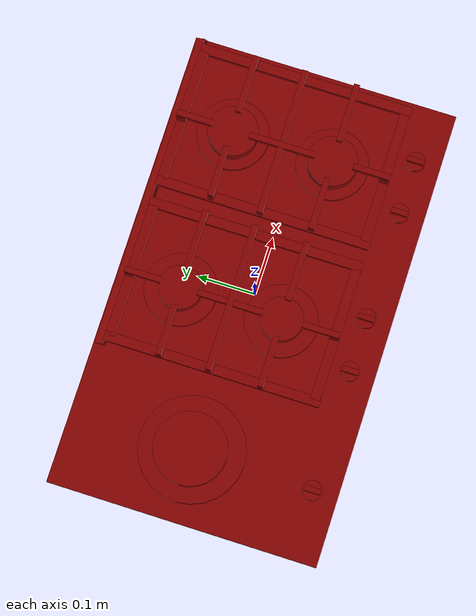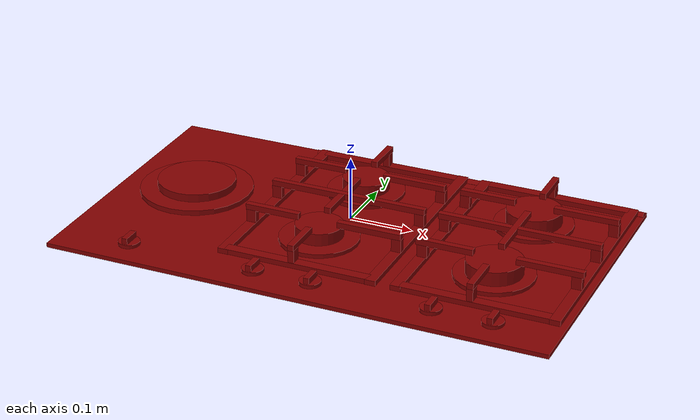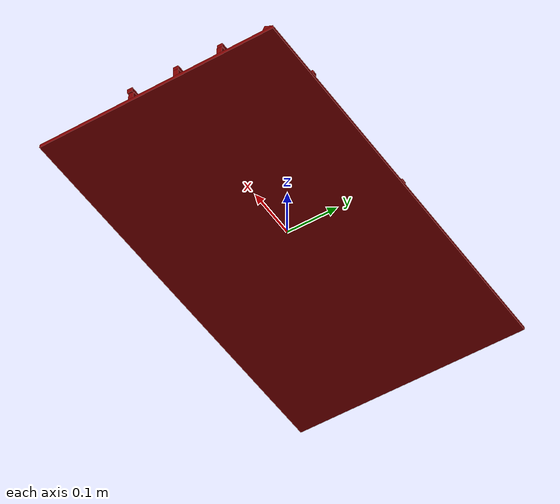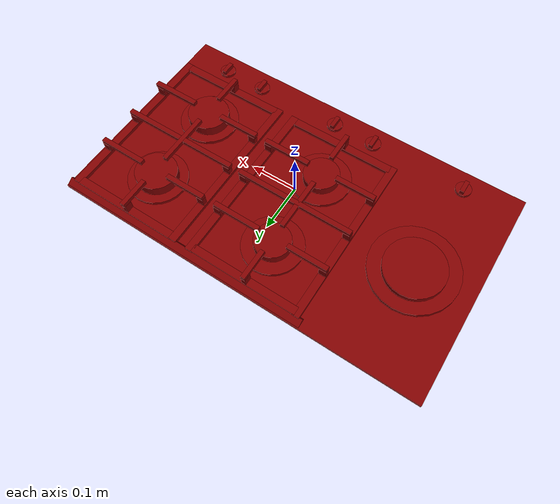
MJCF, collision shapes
<?xml version='1.0' encoding='UTF-8'?>
<mujoco model="model">
  <compiler angle="radian"/>
  <asset>
    <mesh file="visuals/knob_front_center.obj" name="knob_front_center_vis"/>
    <mesh file="visuals/knob_front_right.obj" name="knob_front_right_vis"/>
    <mesh file="visuals/knob_left.obj" name="knob_left_vis"/>
    <mesh file="visuals/knob_rear_center.obj" name="knob_rear_center_vis"/>
    <mesh file="visuals/knob_rear_right.obj" name="knob_rear_right_vis"/>
    <mesh file="visuals/Body001.obj" name="Body001_vis"/>
    <mesh file="visuals/Body002.obj" name="Body002_vis"/>
    <texture file="visuals/T_BC001.png" name="Body001_material" type="2d"/>
    <material name="Body001_material" rgba="1 1 1 1.0" texture="Body001_material" shininess="0.5" specular="3"/>
    <texture file="visuals/T_BC001.png" name="knob_front_center_material" type="2d"/>
    <material name="knob_front_center_material" rgba="1 1 1 1.0" texture="knob_front_center_material" shininess="0.5" specular="0.3103448502657381"/>
    <texture file="visuals/T_BC001.png" name="knob_front_right_material" type="2d"/>
    <material name="knob_front_right_material" rgba="1 1 1 1.0" texture="knob_front_right_material" shininess="0.5" specular="0.3103448502657381"/>
    <texture file="visuals/T_BC001.png" name="knob_left_material" type="2d"/>
    <material name="knob_left_material" rgba="1 1 1 1.0" texture="knob_left_material" shininess="0.5" specular="0.3103448502657381"/>
    <texture file="visuals/T_BC001.png" name="knob_rear_center_material" type="2d"/>
    <material name="knob_rear_center_material" rgba="1 1 1 1.0" texture="knob_rear_center_material" shininess="0.5" specular="0.3103448502657381"/>
    <texture file="visuals/T_BC001.png" name="knob_rear_right_material" type="2d"/>
    <material name="knob_rear_right_material" rgba="1 1 1 1.0" texture="knob_rear_right_material" shininess="0.5" specular="0.3103448502657381"/>
    <texture file="visuals/T_BC001.png" name="Body002_material" type="2d"/>
    <material name="Body002_material" rgba="1 1 1 1.0" texture="Body002_material" shininess="0.5" specular="5"/>
  </asset>
  <default>
    <default class="visual">
      <geom conaffinity="0" contype="0" group="1" type="mesh"/>
    </default>
    <default class="collision">
      <geom group="0" rgba="0.5 0 0 0.5"/>
    </default>
    <default class="spawn">
      <geom group="0" rgba="1 1 1 0.5" contype="0" conaffinity="0"/>
      <site group="0" rgba="1 1 1 0.5"/>
    </default>
    <default class="region">
      <geom group="1" conaffinity="0" contype="0" rgba="0 1 0 0"/>
    </default>
  </default>
  <worldbody>
    <body>
      <body name="object">
        <site type="cylinder" rgba="0.3 0.4 1 0.5" size="0.013540485873818398 0.0024179210886359215" pos="-0.277505 0.021598 -0.009319" name="burner_on_left"/>
        <site type="cylinder" rgba="0.3 0.4 1 0.5" size="0.03587670624256134 0.005192580632865429" pos="-0.027319 0.120478 0.006178" name="burner_on_rear_center"/>
        <site type="cylinder" rgba="0.3 0.4 1 0.5" size="0.03434573486447334 0.005510796792805195" pos="-0.027319 -0.056904 0.006040" name="burner_on_front_center"/>
        <site type="cylinder" rgba="0.3 0.4 1 0.5" size="0.036421552300453186 0.006354000885039568" pos="0.253136 -0.056904 0.005098" name="burner_on_front_right"/>
        <site type="cylinder" rgba="0.3 0.4 1 0.5" size="0.034274742007255554 0.005080236587673426" pos="0.253136 0.121752 0.006166" name="burner_on_rear_right"/>
        <geom mesh="Body001_vis" type="mesh" solimp="0.998 0.998 0.001" solref="0.001 1" density="100" friction="0.95 0.3 0.1" class="visual" material="Body001_material"/>
        <geom class="collision" type="box" pos="0.000000 0.000069 -0.019714" size="0.40003377199172974 0.23250317573547363 0.003460385836660862" quat="1.0 0.0 0.0 0.0"/>
        <body name="knob_front_center">
          <joint axis="0.0 0.0 1.0" pos="-0.074248 -0.188652 -0.006850" limited="true" name="knob_front_center_joint" range="0.0 3.141592653589793" type="hinge" damping="0.05" armature="0.001"/>
          <geom mesh="knob_front_center_vis" type="mesh" solimp="0.998 0.998 0.001" solref="0.001 1" density="100" friction="0.95 0.3 0.1" class="visual" material="knob_front_center_material"/>
          <geom class="collision" type="cylinder" pos="-0.074248 -0.188652 -0.010292" size="0.01683432050049305 0.0028961084317415953" quat="1.0 0.0 0.0 0.0"/>
          <geom class="collision" type="box" pos="-0.074248 -0.188652 -0.002652" size="0.004573558922857046 0.014032300561666489 0.004959801211953163" quat="1.0 0.0 0.0 0.0"/>
        </body>
        <body name="knob_front_right">
          <joint axis="0.0 0.0 1.0" pos="0.207988 -0.188652 -0.006850" limited="true" name="knob_front_right_joint" range="0.0 3.141592653589793" type="hinge" damping="0.05" armature="0.001"/>
          <geom mesh="knob_front_right_vis" type="mesh" solimp="0.998 0.998 0.001" solref="0.001 1" density="100" friction="0.95 0.3 0.1" class="visual" material="knob_front_right_material"/>
          <geom class="collision" type="cylinder" pos="0.207988 -0.188652 -0.010292" size="0.01683431677520275 0.002896111225709319" quat="1.0 0.0 0.0 0.0"/>
          <geom class="collision" type="box" pos="0.207988 -0.188652 -0.002652" size="0.004573558922857046 0.014032300561666489 0.004959801211953163" quat="1.0 0.0 0.0 0.0"/>
        </body>
        <body name="knob_left">
          <joint axis="0.0 0.0 1.0" pos="-0.281778 -0.188652 -0.006850" limited="true" name="knob_left_joint" range="0.0 3.141592653589793" type="hinge" damping="0.05" armature="0.001"/>
          <geom mesh="knob_left_vis" type="mesh" solimp="0.998 0.998 0.001" solref="0.001 1" density="100" friction="0.95 0.3 0.1" class="visual" material="knob_left_material"/>
          <geom class="collision" type="cylinder" pos="-0.281778 -0.188652 -0.010292" size="0.01683431677520275 0.0028961137868463993" quat="1.0 0.0 0.0 0.0"/>
          <geom class="collision" type="box" pos="-0.281778 -0.188652 -0.002652" size="0.004573558922857046 0.014032300561666489 0.004959801211953163" quat="1.0 0.0 0.0 0.0"/>
        </body>
        <body name="knob_rear_center">
          <joint axis="0.0 0.0 1.0" pos="0.018960 -0.188652 -0.006850" limited="true" name="knob_rear_center_joint" range="0.0 3.141592653589793" type="hinge" damping="0.05" armature="0.001"/>
          <geom mesh="knob_rear_center_vis" type="mesh" solimp="0.998 0.998 0.001" solref="0.001 1" density="100" friction="0.95 0.3 0.1" class="visual" material="knob_rear_center_material"/>
          <geom class="collision" type="cylinder" pos="0.018960 -0.188652 -0.010292" size="0.01683431677520275 0.002896109828725457" quat="1.0 0.0 0.0 0.0"/>
          <geom class="collision" type="box" pos="0.018960 -0.188652 -0.002652" size="0.004573558922857046 0.014032300561666489 0.004959801211953163" quat="1.0 0.0 0.0 0.0"/>
        </body>
        <body name="knob_rear_right">
          <joint axis="0.0 0.0 1.0" pos="0.301748 -0.188652 -0.006850" limited="true" name="knob_rear_right_joint" range="0.0 3.141592653589793" type="hinge" damping="0.05" armature="0.001"/>
          <geom mesh="knob_rear_right_vis" type="mesh" solimp="0.998 0.998 0.001" solref="0.001 1" density="100" friction="0.95 0.3 0.1" class="visual" material="knob_rear_right_material"/>
          <geom class="collision" type="cylinder" pos="0.301748 -0.188652 -0.010292" size="0.01683431677520275 0.002896112622693181" quat="1.0 0.0 0.0 0.0"/>
          <geom class="collision" type="box" pos="0.301748 -0.188652 -0.002652" size="0.004573558922857046 0.014032300561666489 0.004959801211953163" quat="1.0 0.0 0.0 0.0"/>
        </body>
        <body name="Body002">
          <geom mesh="Body002_vis" type="mesh" solimp="0.998 0.998 0.001" solref="0.001 1" density="100" friction="0.95 0.3 0.1" class="visual" material="Body002_material"/>
          <geom class="collision" type="cylinder" pos="-0.278126 0.022707 -0.004831" size="0.062413640320301056 0.0091940276324749" quat="1.0 0.0 0.0 0.0"/>
          <geom class="collision" type="cylinder" pos="-0.027941 0.121288 -0.011634" size="0.062413640320301056 0.0032201309222728014" quat="1.0 0.0 0.0 0.0"/>
          <geom class="collision" type="cylinder" pos="0.253611 0.119794 -0.011634" size="0.062413640320301056 0.0032201309222728014" quat="1.0 0.0 0.0 0.0"/>
          <geom class="collision" type="cylinder" pos="-0.027941 -0.054962 -0.011634" size="0.062413640320301056 0.0032201309222728014" quat="1.0 0.0 0.0 0.0"/>
          <geom class="collision" type="cylinder" pos="0.254358 -0.055709 -0.011634" size="0.062413640320301056 0.0032201309222728014" quat="1.0 0.0 0.0 0.0"/>
          <geom class="collision" type="cylinder" pos="-0.027941 0.121288 0.002667" size="0.037448182702064514 0.009705753065645695" quat="1.0 0.0 0.0 0.0"/>
          <geom class="collision" type="cylinder" pos="0.253611 0.119794 0.002667" size="0.0436895489692688 0.011323378421366215" quat="1.0 0.0 0.0 0.0"/>
          <geom class="collision" type="cylinder" pos="-0.027941 -0.054962 0.002667" size="0.037448182702064514 0.009705753065645695" quat="1.0 0.0 0.0 0.0"/>
          <geom class="collision" type="cylinder" pos="0.254358 -0.055709 0.002667" size="0.0436895489692688 0.011323378421366215" quat="1.0 0.0 0.0 0.0"/>
          <geom class="collision" type="box" pos="-0.139998 0.030582 -0.010046" size="0.008379063569009304 0.18784531950950623 0.0040306164883077145" quat="1.0 0.0 0.0 0.0"/>
          <geom class="collision" type="box" pos="0.099728 0.030582 -0.010046" size="0.008379063569009304 0.18784531950950623 0.0040306164883077145" quat="1.0 0.0 0.0 0.0"/>
          <geom class="collision" type="box" pos="0.139402 0.030582 -0.010046" size="0.008379063569009304 0.18784531950950623 0.0040306164883077145" quat="1.0 0.0 0.0 0.0"/>
          <geom class="collision" type="box" pos="0.382082 0.030582 -0.010046" size="0.008379063569009304 0.18784531950950623 0.0040306164883077145" quat="1.0 0.0 0.0 0.0"/>
          <geom class="collision" type="box" pos="0.122010 0.221510 -0.014517" size="0.00837906263768673 0.2774275839328766 0.0040306164883077145" quat="0.6850383877754211 -0.1752779334783554 0.17527782917022705 0.6850385069847107"/>
          <geom class="collision" type="box" pos="0.260953 -0.148251 -0.010046" size="0.11629479378461838 0.008379099890589714 0.0040306164883077145" quat="1.0 0.0 0.0 0.0"/>
          <geom class="collision" type="box" pos="-0.021289 0.209111 -0.010046" size="0.11629479378461838 0.008379099890589714 0.0040306164883077145" quat="1.0 0.0 0.0 0.0"/>
          <geom class="collision" type="box" pos="-0.021289 -0.148251 -0.010046" size="0.11629479378461838 0.008379099890589714 0.0040306164883077145" quat="1.0 0.0 0.0 0.0"/>
          <geom class="collision" type="box" pos="0.260117 0.033675 0.018557" size="0.12891502678394318 0.005033319815993309 0.004617834463715553" quat="1.0 0.0 0.0 0.0"/>
          <geom class="collision" type="box" pos="-0.019281 0.033675 0.018557" size="0.12818381190299988 0.005033186171203852 0.004617834463715553" quat="1.0 0.0 0.0 0.0"/>
          <geom class="collision" type="box" pos="-0.028945 0.033406 0.018557" size="0.005033211782574654 0.0569927804172039 0.004617792088538408" quat="1.0 0.0 0.0 0.0"/>
          <geom class="collision" type="box" pos="0.253199 0.032676 0.018557" size="0.005033211782574654 0.05781002715229988 0.004617917817085981" quat="1.0 0.0 0.0 0.0"/>
          <geom class="collision" type="box" pos="-0.027925 0.185476 0.018557" size="0.005033211782574654 0.03232593089342117 0.0046177939511835575" quat="1.0 0.0 0.0 0.0"/>
          <geom class="collision" type="box" pos="-0.027925 -0.124134 0.018557" size="0.005033211782574654 0.03232593089342117 0.004617794416844845" quat="1.0 0.0 0.0 0.0"/>
          <geom class="collision" type="box" pos="0.254252 0.186795 0.018557" size="0.005033211782574654 0.032238226383924484 0.004617912694811821" quat="1.0 0.0 0.0 0.0"/>
          <geom class="collision" type="box" pos="0.254252 -0.124134 0.018557" size="0.005033211782574654 0.03232593089342117 0.004617796279489994" quat="1.0 0.0 0.0 0.0"/>
          <geom class="collision" type="box" pos="-0.104386 0.119910 0.018557" size="0.044026222079992294 0.005033225752413273 0.004617797210812569" quat="1.0 0.0 0.0 0.0"/>
          <geom class="collision" type="box" pos="0.055225 0.119910 0.018557" size="0.05168162286281586 0.005033228080719709 0.004617797676473856" quat="1.0 0.0 0.0 0.0"/>
          <geom class="collision" type="box" pos="-0.104386 -0.056450 0.018557" size="0.044026222079992294 0.005033225752413273 0.004617798607796431" quat="1.0 0.0 0.0 0.0"/>
          <geom class="collision" type="box" pos="0.055225 -0.056450 0.018557" size="0.051681648939847946 0.005033228080719709 0.004617799539119005" quat="1.0 0.0 0.0 0.0"/>
          <geom class="collision" type="box" pos="0.176194 -0.056450 0.018557" size="0.04535540193319321 0.00503322621807456 0.004617834463715553" quat="1.0 0.0 0.0 0.0"/>
          <geom class="collision" type="box" pos="0.340341 -0.056450 0.018557" size="0.051681678742170334 0.005033228080719709 0.004617800936102867" quat="1.0 0.0 0.0 0.0"/>
          <geom class="collision" type="box" pos="0.178131 0.120727 0.018557" size="0.044490404427051544 0.00503322621807456 0.004617834463715553" quat="1.0 0.0 0.0 0.0"/>
          <geom class="collision" type="box" pos="0.337012 0.120727 0.018557" size="0.05142131447792053 0.005033189430832863 0.004617802798748016" quat="1.0 0.0 0.0 0.0"/>
          <geom class="collision" type="box" pos="-0.027925 0.209333 0.004627" size="0.005033211782574654 0.007894004695117474 0.010369982570409775" quat="1.0 0.0 0.0 0.0"/>
          <geom class="collision" type="box" pos="-0.027925 -0.147911 0.004627" size="0.005033211782574654 0.007894004695117474 0.010369982570409775" quat="1.0 0.0 0.0 0.0"/>
          <geom class="collision" type="box" pos="0.141223 0.120548 0.003873" size="0.007894020527601242 0.0050332145765423775 0.010369982570409775" quat="1.0 0.0 0.0 0.0"/>
          <geom class="collision" type="box" pos="0.253551 -0.147911 0.004627" size="0.005033211782574654 0.007894004695117474 0.010369982570409775" quat="1.0 0.0 0.0 0.0"/>
          <geom class="collision" type="box" pos="0.381292 0.120548 0.003873" size="0.007894007489085197 0.0050332145765423775 0.010369982570409775" quat="1.0 0.0 0.0 0.0"/>
          <geom class="collision" type="box" pos="0.141223 0.033934 0.003873" size="0.007894007489085197 0.0050332145765423775 0.010369982570409775" quat="1.0 0.0 0.0 0.0"/>
          <geom class="collision" type="box" pos="0.381292 0.033934 0.003873" size="0.007894007489085197 0.0050332145765423775 0.010369982570409775" quat="1.0 0.0 0.0 0.0"/>
          <geom class="collision" type="box" pos="0.141223 -0.055728 0.003873" size="0.007894020527601242 0.0050332145765423775 0.010369982570409775" quat="1.0 0.0 0.0 0.0"/>
          <geom class="collision" type="box" pos="0.381292 -0.055728 0.003873" size="0.007894007489085197 0.0050332145765423775 0.010369982570409775" quat="1.0 0.0 0.0 0.0"/>
          <geom class="collision" type="box" pos="0.253551 0.210108 0.004627" size="0.005033211782574654 0.007894004695117474 0.010369982570409775" quat="1.0 0.0 0.0 0.0"/>
          <geom class="collision" type="box" pos="-0.139819 0.120548 0.003873" size="0.007894007489085197 0.0050332145765423775 0.010369982570409775" quat="1.0 0.0 0.0 0.0"/>
          <geom class="collision" type="box" pos="0.100249 0.120548 0.003873" size="0.00789401400834322 0.0050332145765423775 0.010369982570409775" quat="1.0 0.0 0.0 0.0"/>
          <geom class="collision" type="box" pos="-0.139819 0.033724 0.003873" size="0.007894020527601242 0.0050332145765423775 0.010369982570409775" quat="1.0 0.0 0.0 0.0"/>
          <geom class="collision" type="box" pos="0.100249 0.033724 0.003873" size="0.00789401400834322 0.0050332145765423775 0.010369982570409775" quat="1.0 0.0 0.0 0.0"/>
          <geom class="collision" type="box" pos="-0.139819 -0.056476 0.003873" size="0.007894007489085197 0.0050332145765423775 0.010369982570409775" quat="1.0 0.0 0.0 0.0"/>
          <geom class="collision" type="box" pos="0.100249 -0.056476 0.003873" size="0.00789401400834322 0.0050332145765423775 0.010369982570409775" quat="1.0 0.0 0.0 0.0"/>
          <geom class="collision" type="box" pos="0.260953 0.210550 -0.010046" size="0.11629479378461838 0.008379099890589714 0.0040306164883077145" quat="1.0 0.0 0.0 0.0"/>
          <geom class="collision" type="cylinder" pos="-0.277313 0.020433 -0.012796" size="0.09036297351121902 0.004662131890654564" quat="1.0 0.0 0.0 0.0"/>
        </body>
        <geom class="region" name="reg_main" type="box" pos="0.0 0.0 -0.019714500000000003" size="0.400034 0.232572 0.0034605"/>
      </body>
    </body>
  </worldbody>
  <actuator>
    <motor name="knob_front_center_joint_actuator" joint="knob_front_center_joint" gear="10"/>
    <motor name="knob_front_right_joint_actuator" joint="knob_front_right_joint" gear="10"/>
    <motor name="knob_left_joint_actuator" joint="knob_left_joint" gear="10"/>
    <motor name="knob_rear_center_joint_actuator" joint="knob_rear_center_joint" gear="10"/>
    <motor name="knob_rear_right_joint_actuator" joint="knob_rear_right_joint" gear="10"/>
  </actuator>
</mujoco>
